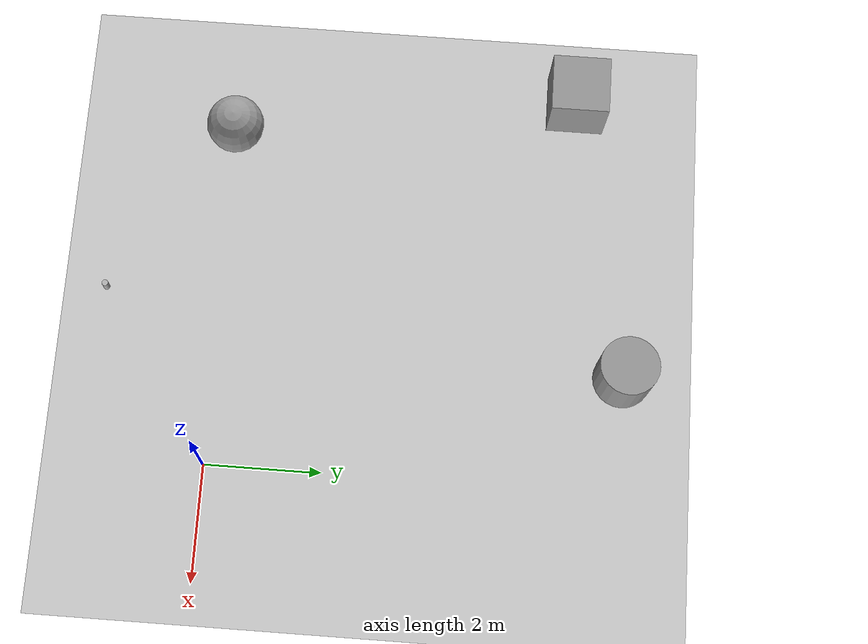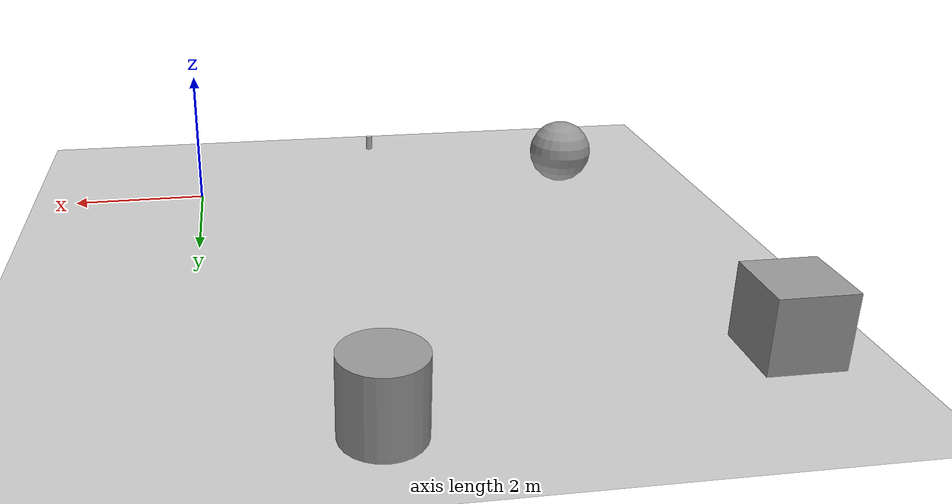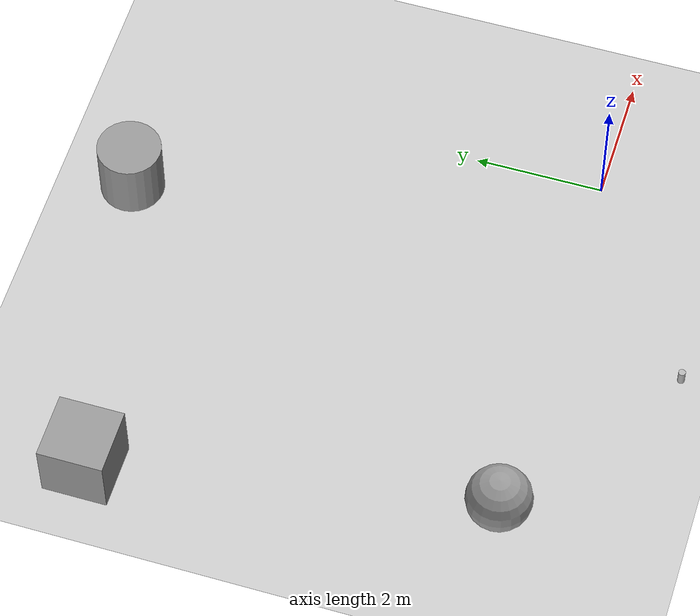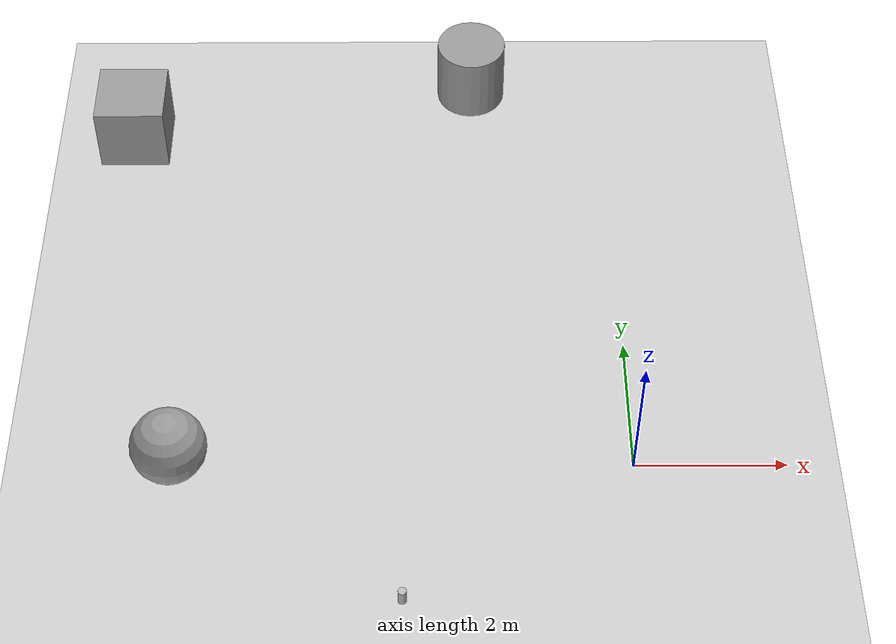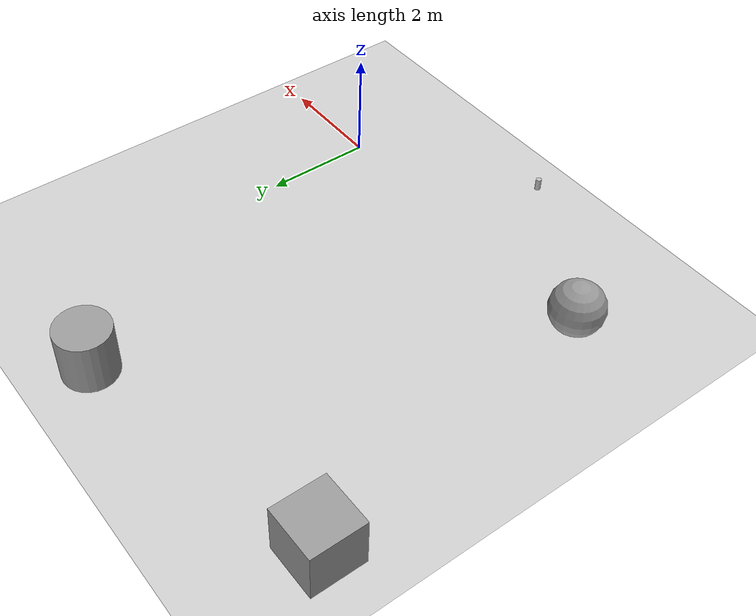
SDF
<sdf version="1.4">
 <world name="default">
  <light name="sun" type="directional">
   <pose>0 0 10 0 -0 0</pose>
   <diffuse>0.8 0.8 0.8 1</diffuse>
   <specular>0.2 0.2 0.2 1</specular>
   <attenuation>
    <range>1000</range>
    <constant>0.9</constant>
    <linear>0.01</linear>
    <quadratic>0.001</quadratic>
   </attenuation>
   <direction>-0.5 0.1 -0.9</direction>
  </light>
  <model name="ground_plane">
   <static>1</static>
   <link name="link">
    <collision name="collision">
     <geometry><plane><normal>0 0 1</normal><size>100 100</size></plane></geometry>
     <surface><friction><ode><mu>100</mu><mu2>50</mu2></ode></friction></surface>
    </collision>
    <visual name="visual">
     <cast_shadows>0</cast_shadows>
     <geometry><plane><normal>0 0 1</normal><size>100 100</size></plane></geometry>
     <material>
      <script><uri>file://media/materials/scripts/gazebo.material</uri><name>Gazebo/Grey</name></script>
     </material>
    </visual>
    <velocity_decay><linear>0</linear><angular>0</angular></velocity_decay>
   </link>
  </model>
  <physics type="ode">
   <max_step_size>0.01</max_step_size>
   <real_time_factor>1</real_time_factor>
   <real_time_update_rate>100</real_time_update_rate>
   <gravity>0 0 -9.8</gravity>
  </physics>
  <scene><ambient>0.4 0.4 0.4 1</ambient><background>0.7 0.7 0.7 1</background><shadows>1</shadows></scene>
  <spherical_coordinates>
   <surface_model>EARTH_WGS84</surface_model>
   <latitude_deg>0</latitude_deg>
   <longitude_deg>0</longitude_deg>
   <elevation>0</elevation>
   <heading_deg>0</heading_deg>
  </spherical_coordinates>
  <model name="unit_sphere_1">
   <pose>-6 0 0.5 0 -0 0</pose>
   <link name="link">
    <inertial>
     <mass>1</mass>
     <inertia><ixx>1</ixx><ixy>0</ixy><ixz>0</ixz><iyy>1</iyy><iyz>0</iyz><izz>1</izz></inertia>
    </inertial>
    <collision name="collision"><geometry><sphere><radius>0.5</radius></sphere></geometry></collision>
    <visual name="visual">
     <geometry><sphere><radius>0.5</radius></sphere></geometry>
     <material>
      <script><uri>file://media/materials/scripts/gazebo.material</uri><name>Gazebo/Grey</name></script>
     </material>
    </visual>
    <velocity_decay><linear>0</linear><angular>0</angular></velocity_decay>
   </link>
   <static>0</static>
  </model>
  <model name="unit_cylinder_1">
   <pose>-2 7 0.49912 -0 -0 -0</pose>
   <link name="link">
    <inertial>
     <mass>1</mass>
     <inertia><ixx>1</ixx><ixy>0</ixy><ixz>0</ixz><iyy>1</iyy><iyz>0</iyz><izz>1</izz></inertia>
    </inertial>
    <collision name="collision">
     <geometry><cylinder><radius>0.5</radius><length>1</length></cylinder></geometry>
    </collision>
    <visual name="visual">
     <geometry><cylinder><radius>0.5</radius><length>1</length></cylinder></geometry>
     <material>
      <script><uri>file://media/materials/scripts/gazebo.material</uri><name>Gazebo/Grey</name></script>
     </material>
    </visual>
    <velocity_decay><linear>0</linear><angular>0</angular></velocity_decay>
   </link>
   <static>0</static>
  </model>
  <model name="unit_box_1">
   <pose>-7 6 0.5 0 -0 0</pose>
   <link name="link">
    <inertial>
     <mass>1</mass>
     <inertia><ixx>1</ixx><ixy>0</ixy><ixz>0</ixz><iyy>1</iyy><iyz>0</iyz><izz>1</izz></inertia>
    </inertial>
    <collision name="collision"><geometry><box><size>1 1 1</size></box></geometry></collision>
    <visual name="visual">
     <geometry><box><size>1 1 1</size></box></geometry>
     <material>
      <script><uri>file://media/materials/scripts/gazebo.material</uri><name>Gazebo/Grey</name></script>
     </material>
    </visual>
    <velocity_decay><linear>0</linear><angular>0</angular></velocity_decay>
   </link>
   <static>0</static>
  </model>
  <model name="beer">
   <link name="link">
    <pose>0 0 0.115 0 -0 0</pose>
    <inertial>
     <mass>0.39</mass>
     <inertia><ixx>0.00058</ixx><ixy>0</ixy><ixz>0</ixz><iyy>0.00058</iyy><iyz>0</iyz><izz>0.00019</izz></inertia>
    </inertial>
    <collision name="collision">
     <geometry><cylinder><radius>0.055</radius><length>0.23</length></cylinder></geometry>
    </collision>
    <visual name="visual">
     <geometry><cylinder><radius>0.055</radius><length>0.23</length></cylinder></geometry>
     <material>
      <script>
       <uri>model://beer/materials/scripts</uri>
       <uri>model://beer/materials/textures</uri>
       <name>Beer/Diffuse</name>
      </script>
     </material>
    </visual>
    <velocity_decay><linear>0</linear><angular>0</angular></velocity_decay>
   </link>
   <pose>-3 -2.00001 -0.00088 5e-05 -1e-05 -0.000387</pose>
   <static>0</static>
  </model>
 </world>
</sdf>
